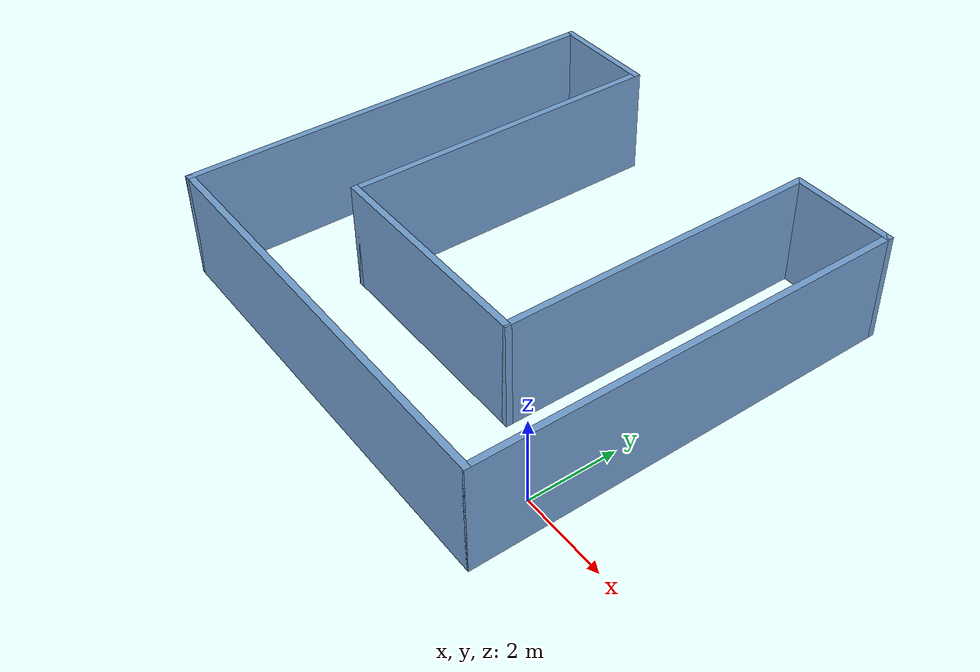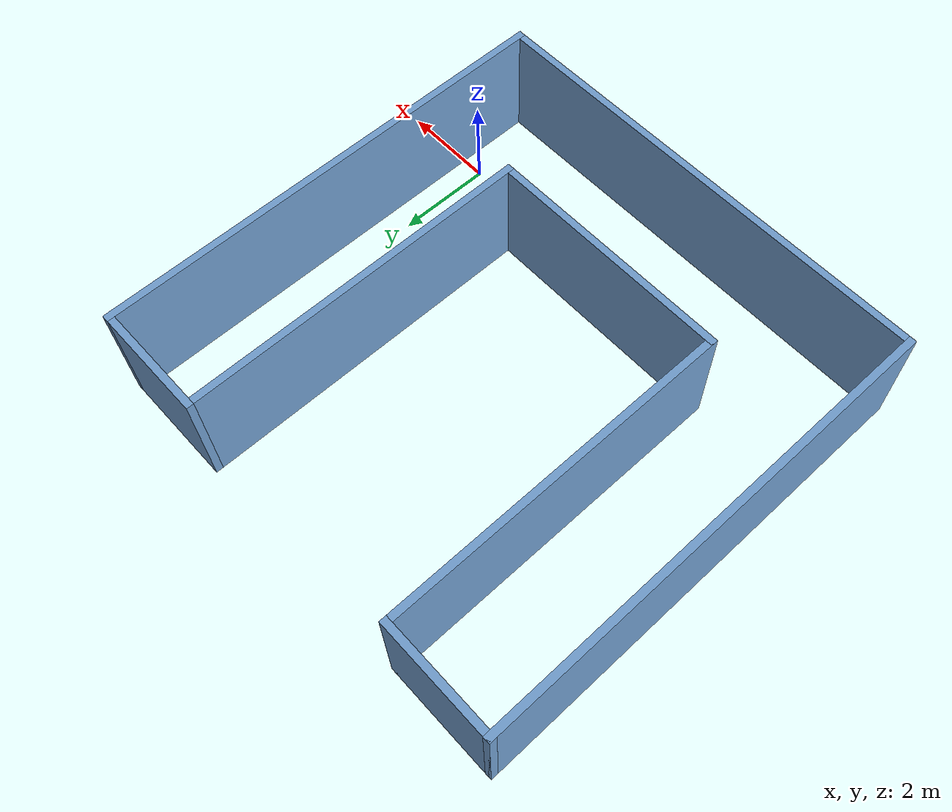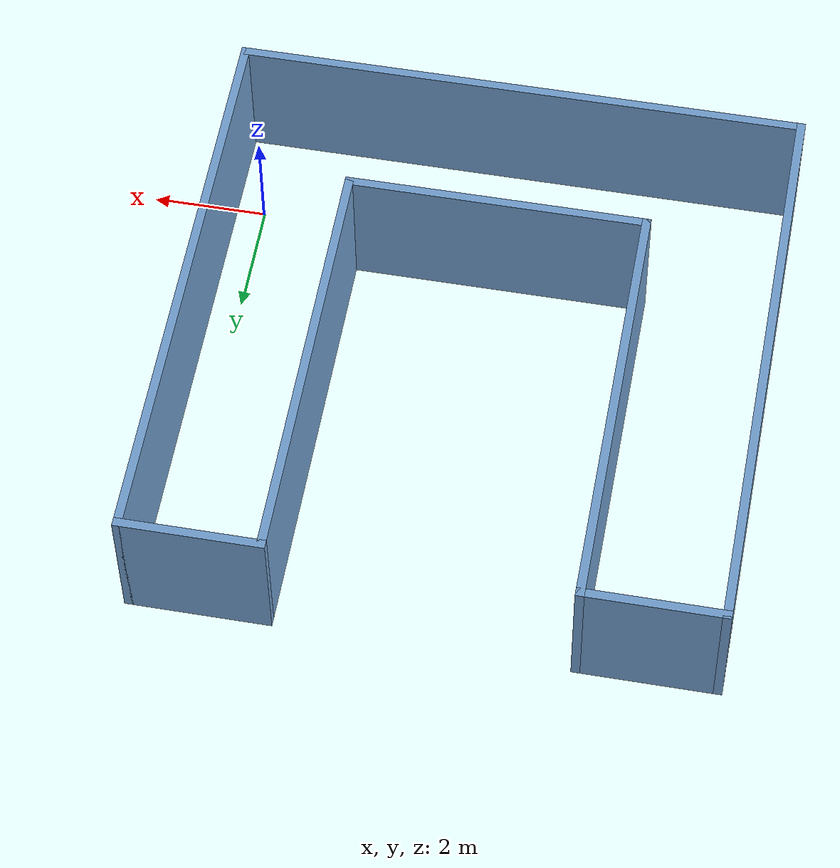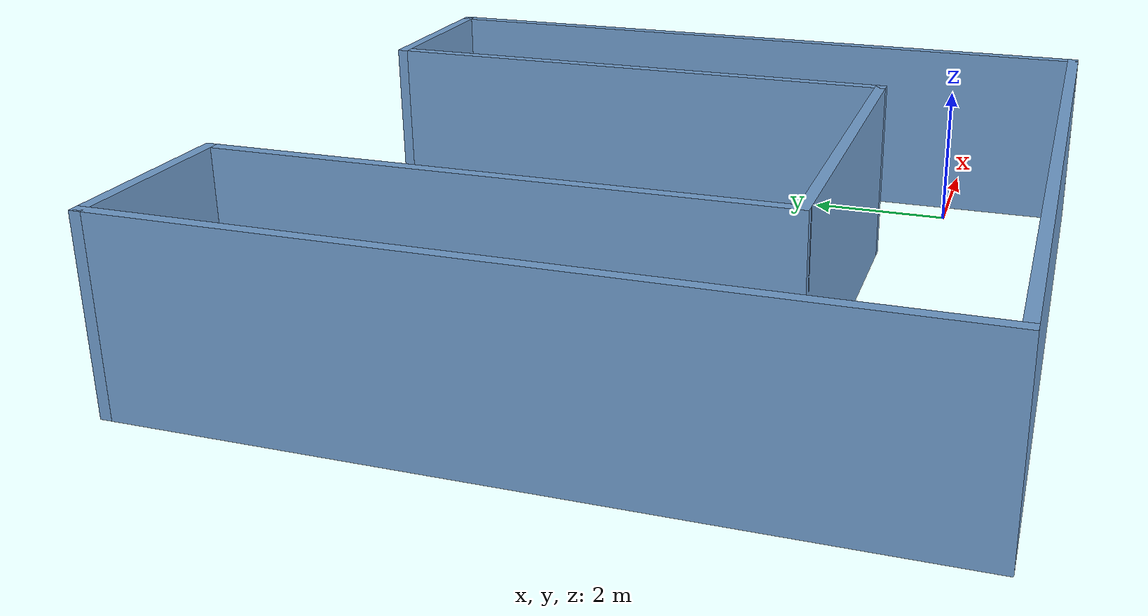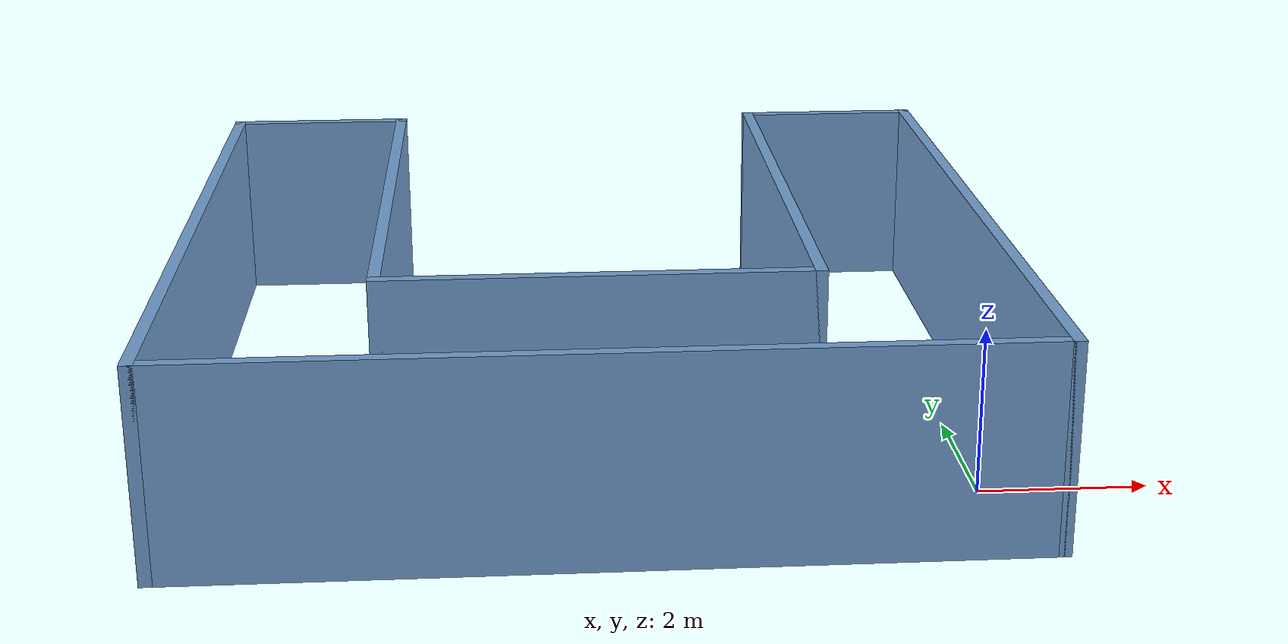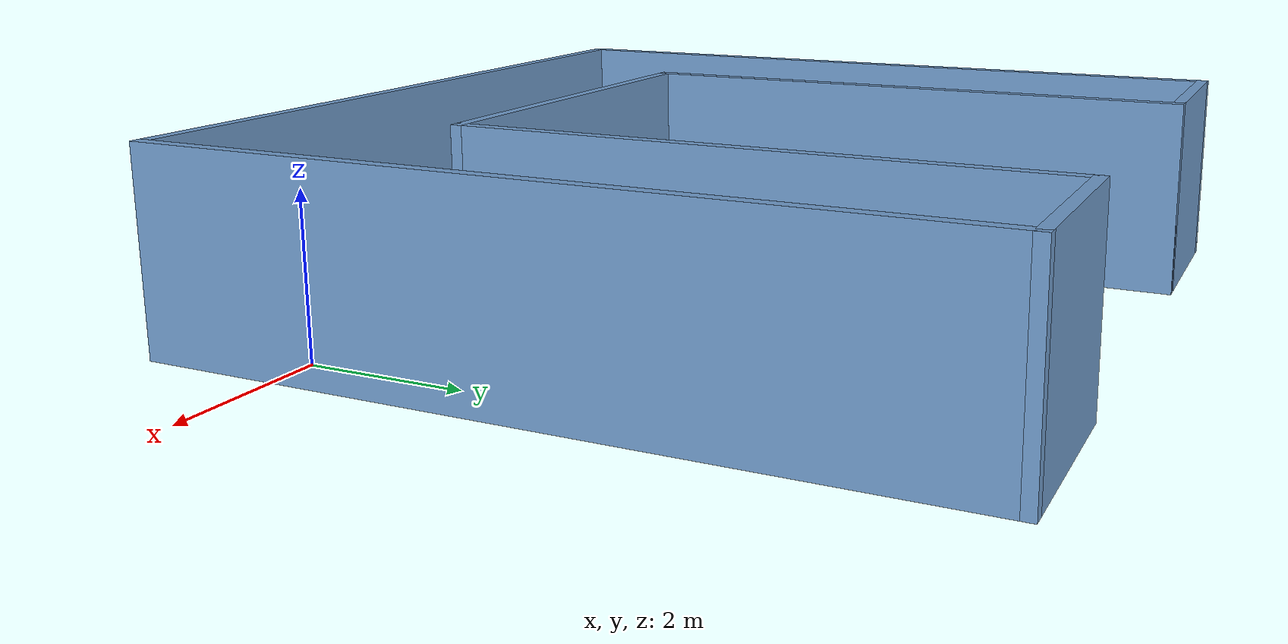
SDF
<?xml version='1.0'?>
<sdf version='1.7'>
  <model name='mybuilding'>
    <pose>-4.35107 3.25029 0 0 -0 0</pose>
    <link name='Wall_10'>
      <collision name='Wall_10_Collision'>
        <geometry>
          <box>
            <size>2.5 0.15 2.5</size>
          </box>
        </geometry>
        <pose>0 0 1.25 0 -0 0</pose>
      </collision>
      <visual name='Wall_10_Visual'>
        <pose>0 0 1.25 0 -0 0</pose>
        <geometry>
          <box>
            <size>2.5 0.15 2.5</size>
          </box>
        </geometry>
        <material>
          <script>
            <uri>file://media/materials/scripts/gazebo.material</uri>
            <name>Gazebo/Grey</name>
          </script>
          <ambient>0.447059 0.623529 0.811765 1</ambient>
        </material>
        <meta>
          <layer>0</layer>
        </meta>
      </visual>
      <pose>-3.75 4.925 0 0 -0 0</pose>
    </link>
    <link name='Wall_11'>
      <collision name='Wall_11_Collision'>
        <geometry>
          <box>
            <size>7.5 0.15 2.5</size>
          </box>
        </geometry>
        <pose>0 0 1.25 0 -0 0</pose>
      </collision>
      <visual name='Wall_11_Visual'>
        <pose>0 0 1.25 0 -0 0</pose>
        <geometry>
          <box>
            <size>7.5 0.15 2.5</size>
          </box>
        </geometry>
        <material>
          <script>
            <uri>file://media/materials/scripts/gazebo.material</uri>
            <name>Gazebo/Grey</name>
          </script>
          <ambient>0.447059 0.623529 0.811765 1</ambient>
        </material>
        <meta>
          <layer>0</layer>
        </meta>
      </visual>
      <pose>-2.575 1.25 0 0 -0 -1.5708</pose>
    </link>
    <link name='Wall_12'>
      <collision name='Wall_12_Collision'>
        <geometry>
          <box>
            <size>5.3 0.15 2.5</size>
          </box>
        </geometry>
        <pose>0 0 1.25 0 -0 0</pose>
      </collision>
      <visual name='Wall_12_Visual'>
        <pose>0 0 1.25 0 -0 0</pose>
        <geometry>
          <box>
            <size>5.3 0.15 2.5</size>
          </box>
        </geometry>
        <material>
          <script>
            <uri>file://media/materials/scripts/gazebo.material</uri>
            <name>Gazebo/Grey</name>
          </script>
          <ambient>0.447059 0.623529 0.811765 1</ambient>
        </material>
        <meta>
          <layer>0</layer>
        </meta>
      </visual>
      <pose>0 -2.425 0 0 -0 0</pose>
    </link>
    <link name='Wall_4'>
      <collision name='Wall_4_Collision'>
        <geometry>
          <box>
            <size>10 0.15 2.5</size>
          </box>
        </geometry>
        <pose>0 0 1.25 0 -0 0</pose>
      </collision>
      <visual name='Wall_4_Visual'>
        <pose>0 0 1.25 0 -0 0</pose>
        <geometry>
          <box>
            <size>10 0.15 2.5</size>
          </box>
        </geometry>
        <material>
          <script>
            <uri>file://media/materials/scripts/gazebo.material</uri>
            <name>Gazebo/Grey</name>
          </script>
          <ambient>0.447059 0.623529 0.811765 1</ambient>
        </material>
        <meta>
          <layer>0</layer>
        </meta>
      </visual>
      <pose>-4.925 -0 0 0 -0 -1.5708</pose>
    </link>
    <link name='Wall_5'>
      <collision name='Wall_5_Collision'>
        <geometry>
          <box>
            <size>10 0.15 2.5</size>
          </box>
        </geometry>
        <pose>0 0 1.25 0 -0 0</pose>
      </collision>
      <visual name='Wall_5_Visual'>
        <pose>0 0 1.25 0 -0 0</pose>
        <geometry>
          <box>
            <size>10 0.15 2.5</size>
          </box>
        </geometry>
        <material>
          <script>
            <uri>file://media/materials/scripts/gazebo.material</uri>
            <name>Gazebo/Grey</name>
          </script>
          <ambient>0.447059 0.623529 0.811765 1</ambient>
        </material>
        <meta>
          <layer>0</layer>
        </meta>
      </visual>
      <pose>0 -4.925 0 0 -0 0</pose>
    </link>
    <link name='Wall_6'>
      <collision name='Wall_6_Collision'>
        <geometry>
          <box>
            <size>10 0.15 2.5</size>
          </box>
        </geometry>
        <pose>0 0 1.25 0 -0 0</pose>
      </collision>
      <visual name='Wall_6_Visual'>
        <pose>0 0 1.25 0 -0 0</pose>
        <geometry>
          <box>
            <size>10 0.15 2.5</size>
          </box>
        </geometry>
        <material>
          <script>
            <uri>file://media/materials/scripts/gazebo.material</uri>
            <name>Gazebo/Grey</name>
          </script>
          <ambient>0.447059 0.623529 0.811765 1</ambient>
        </material>
        <meta>
          <layer>0</layer>
        </meta>
      </visual>
      <pose>4.925 -0 0 0 -0 1.5708</pose>
    </link>
    <link name='Wall_7'>
      <collision name='Wall_7_Collision'>
        <geometry>
          <box>
            <size>2.5 0.15 2.5</size>
          </box>
        </geometry>
        <pose>0 0 1.25 0 -0 0</pose>
      </collision>
      <visual name='Wall_7_Visual'>
        <pose>0 0 1.25 0 -0 0</pose>
        <geometry>
          <box>
            <size>2.5 0.15 2.5</size>
          </box>
        </geometry>
        <material>
          <script>
            <uri>file://media/materials/scripts/gazebo.material</uri>
            <name>Gazebo/Grey</name>
          </script>
          <ambient>0.447059 0.623529 0.811765 1</ambient>
        </material>
        <meta>
          <layer>0</layer>
        </meta>
      </visual>
      <pose>3.75 4.925 0 0 -0 3.14159</pose>
    </link>
    <link name='Wall_8'>
      <collision name='Wall_8_Collision'>
        <geometry>
          <box>
            <size>7.5 0.15 2.5</size>
          </box>
        </geometry>
        <pose>0 0 1.25 0 -0 0</pose>
      </collision>
      <visual name='Wall_8_Visual'>
        <pose>0 0 1.25 0 -0 0</pose>
        <geometry>
          <box>
            <size>7.5 0.15 2.5</size>
          </box>
        </geometry>
        <material>
          <script>
            <uri>file://media/materials/scripts/gazebo.material</uri>
            <name>Gazebo/Grey</name>
          </script>
          <ambient>0.447059 0.623529 0.811765 1</ambient>
        </material>
        <meta>
          <layer>0</layer>
        </meta>
      </visual>
      <pose>2.575 1.25 0 0 -0 -1.5708</pose>
    </link>
    <static>1</static>
  </model>
</sdf>
